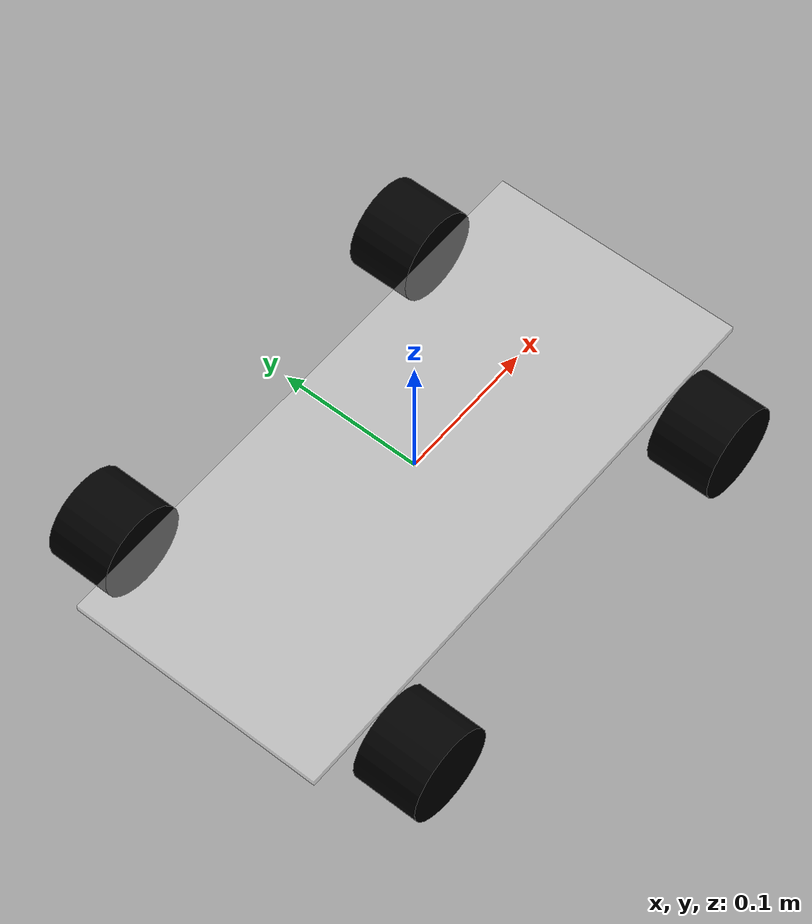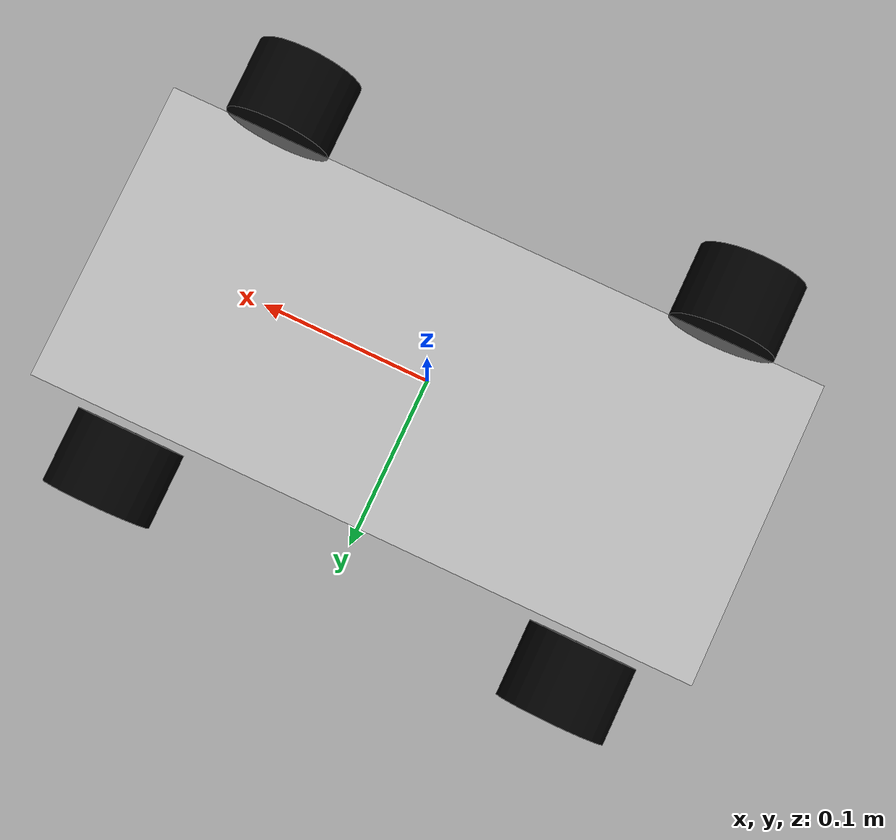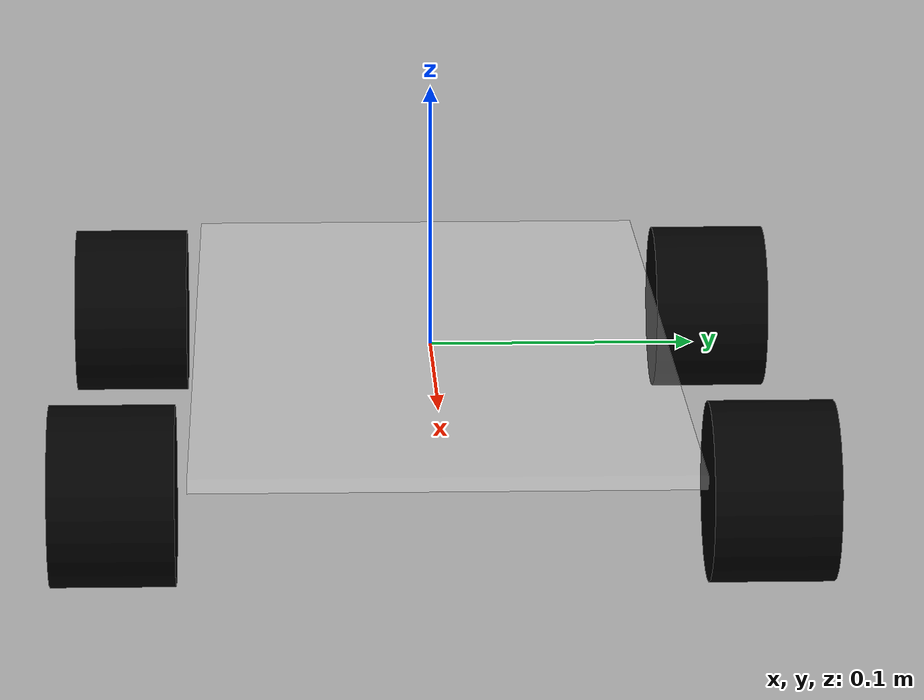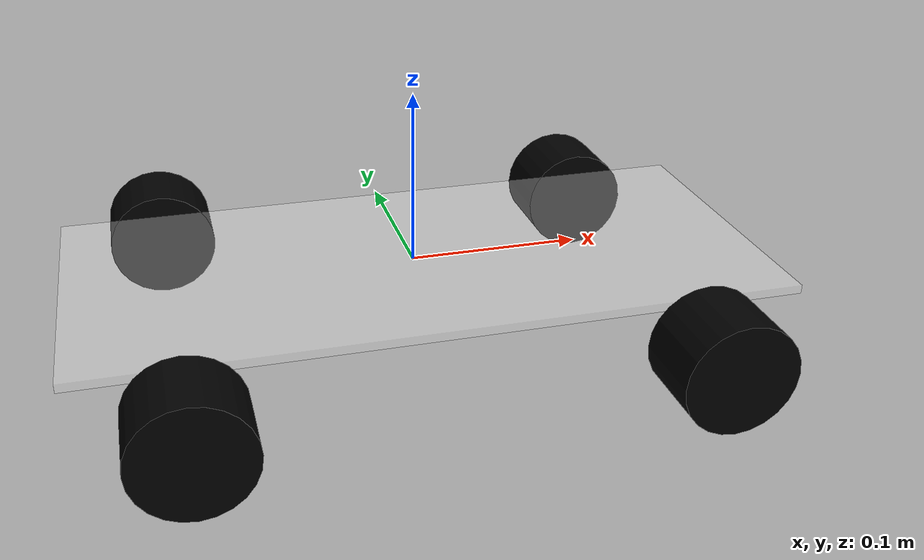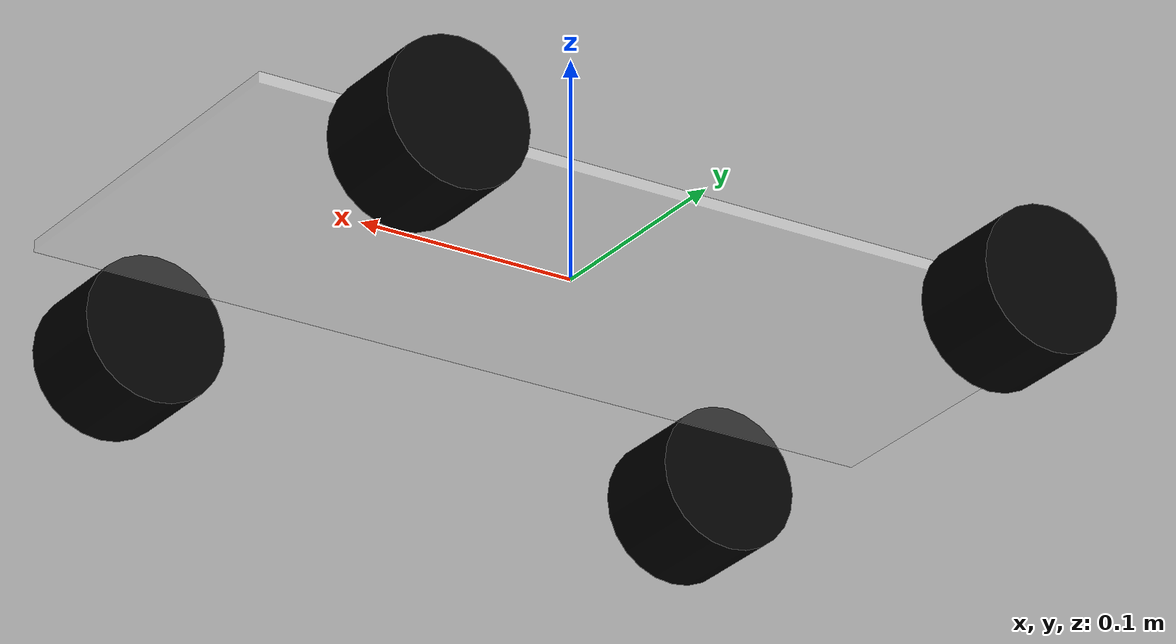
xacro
<?xml version="1.0"?>
<robot xmlns:xacro="http://www.ros.org/wiki/xacro" >

    <xacro:include filename="inertial_macros.xacro"/>

    <material name="white">
        <color rgba="1 1 1 0.3" />
    </material>

    <material name="orange">
        <color rgba="1 0.3 0.1 1"/>
    </material>

    <material name="blue">
        <color rgba="0.2 0.2 1 1"/>
    </material>

    <material name="black">
        <color rgba="0 0 0 1"/>
    </material>

    <material name="red">
        <color rgba="1 0 0 1"/>
    </material>

    <!-- BASE_FOOTPRINT LINK -->

    <link name="base_footprint">
    </link>

    <joint name="base_footprint_joint" type="fixed">
        <parent link="base_footprint"/>
        <child link="base_link"/>
        <origin xyz="0 0 0" rpy="0 0 0"/>
    </joint>

    <!-- BASE LINK -->

    <link name="base_link">

    </link>

    <!-- CHASSIS LINK -->

    <joint name="chassis_joint" type="fixed">
        <parent link="base_link"/>
        <child link="chassis"/>
        <origin xyz="0 0 0"/>
    </joint>

    <link name="chassis">
        <visual>
            <origin xyz="0 0 0"/>
            <geometry>
                <box size="0.4 0.18 0.005"/>
            </geometry>
            <material name="white"/>
        </visual>
        <collision>
            <origin xyz="0 0 0"/>
            <geometry>
                <box size="0.4 0.18 0.005"/>
            </geometry>
        </collision>
        <xacro:inertial_box mass="0.5" x="0.4" y="0.18" z="0.005">
            <origin xyz="0 0 0" rpy="0.0 0.0 0.0"/>
        </xacro:inertial_box>
    </link>

    <gazebo reference="chassis">
        <material>Gazebo/GreyTransparent</material>
    </gazebo>

    <!-- LEFT FRONT WHEEL LINK -->

    <joint name="front_left_wheel_joint" type="continuous">
        <parent link="base_link"/>
        <child link="front_left_wheel"/>
        <origin xyz="0.14 0.1175 -0.02" rpy="-${pi/2} 0 0" />
        <axis xyz="0 0 1"/>
    </joint>

    <link name="front_left_wheel">
        <visual>
            <geometry>
                <cylinder radius="0.0325" length="0.045"/>
            </geometry>
            <material name="black"/>
        </visual>
        <collision>
            <geometry>
                <sphere radius="0.0325"/>
            </geometry>
        </collision>
        <xacro:inertial_cylinder mass="0.1" length="0.045" radius="0.0325">
            <origin xyz="0 0 0" rpy="0.0 0.0 0.0"/>
        </xacro:inertial_cylinder>
    </link>

    <gazebo reference="front_left_wheel">
        <material>Gazebo/Black</material>
        <mu1 value="10"></mu1>
        <mu2 value="10"></mu2>
        <kp>1e10</kp>
        <kd>1e8</kd>
    </gazebo>

    <!-- LEFT REAR WHEEL LINK -->

    <joint name="rear_left_wheel_joint" type="continuous">
        <parent link="base_link"/>
        <child link="rear_left_wheel"/>
        <origin xyz="-0.14 0.1175 -0.02" rpy="-${pi/2} 0 0" />
        <axis xyz="0 0 1"/>
    </joint>

    <link name="rear_left_wheel">
        <visual>
            <geometry>
                <cylinder radius="0.0325" length="0.045"/>
            </geometry>
            <material name="black"/>
        </visual>
        <collision>
            <geometry>
                <sphere radius="0.0325"/>
            </geometry>
        </collision>
        <xacro:inertial_cylinder mass="0.1" length="0.045" radius="0.0325">
            <origin xyz="0 0 0" rpy="0.0 0.0 0.0"/>
        </xacro:inertial_cylinder>
    </link>

    <gazebo reference="rear_left_wheel">
        <material>Gazebo/Black</material>
        <mu1 value="10"></mu1>
        <mu2 value="10"></mu2>
        <kp>1e10</kp>
        <kd>1e8</kd>
    </gazebo>

    <!-- RIGHT FRONT WHEEL LINK -->

    <joint name="front_right_wheel_joint" type="continuous">
        <parent link="base_link"/>
        <child link="front_right_wheel"/>
        <origin xyz="0.14 -0.1175 -0.02" rpy="
        ${pi/2} 0 0" />
        <axis xyz="0 0 -1"/>
    </joint>

    <link name="front_right_wheel">
        <visual>
            <geometry>
                <cylinder radius="0.0325" length="0.045"/>
            </geometry>
            <material name="black"/>
        </visual>
        <collision>
            <geometry>
                <sphere radius="0.0325"/>
            </geometry>
        </collision>
        <xacro:inertial_cylinder mass="0.1" length="0.045" radius="0.0325">
            <origin xyz="0 0 0" rpy="0.0 0.0 0.0"/>
        </xacro:inertial_cylinder>
    </link>

    <gazebo reference="front_right_wheel">
        <material>Gazebo/Black</material>
        <mu1 value="10"></mu1>
        <mu2 value="10"></mu2>
        <kp>1e10</kp>
        <kd>1e8</kd>
    </gazebo>

    <!-- RIGHT REAR WHEEL LINK -->

    <joint name="rear_right_wheel_joint" type="continuous">
        <parent link="base_link"/>
        <child link="rear_right_wheel"/>
        <origin xyz="-0.14 -0.1175 -0.02" rpy="${pi/2} 0 0" />
        <axis xyz="0 0 -1"/>
    </joint>

    <link name="rear_right_wheel">
        <visual>
            <geometry>
                <cylinder radius="0.0325" length="0.045"/>
            </geometry>
            <material name="black"/>
        </visual>
        <collision>
            <geometry>
                <sphere radius="0.0325"/>
            </geometry>
        </collision>
        <xacro:inertial_cylinder mass="0.1" length="0.045" radius="0.0325">
            <origin xyz="0 0 0" rpy="0.0 0.0 0.0"/>
        </xacro:inertial_cylinder>
    </link>

    <gazebo reference="rear_right_wheel">
        <material>Gazebo/Black</material>
        <mu1 value="10"></mu1>
        <mu2 value="10"></mu2>
        <kp>1e10</kp>
        <kd>1e8</kd>
    </gazebo>

</robot>
